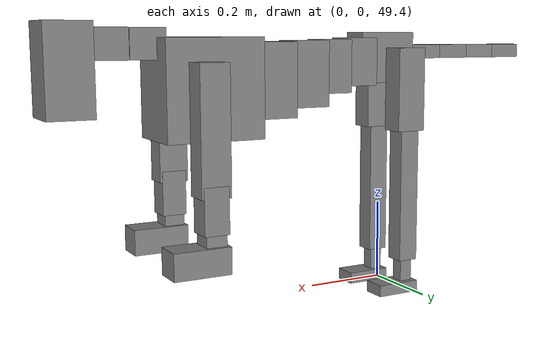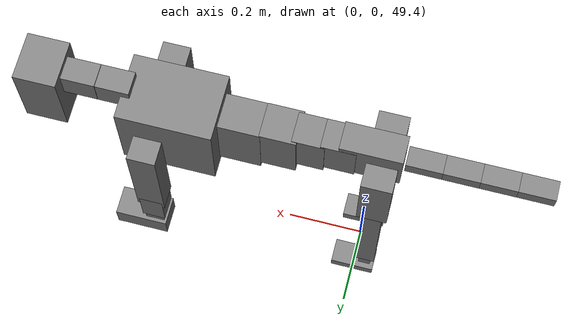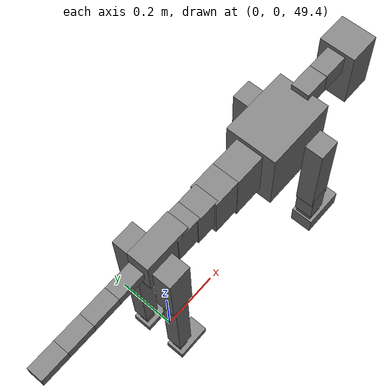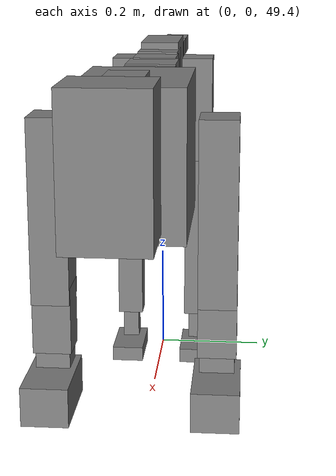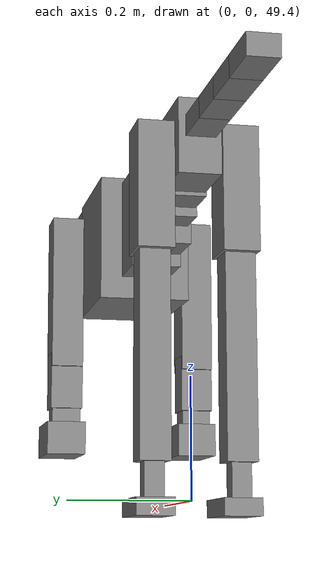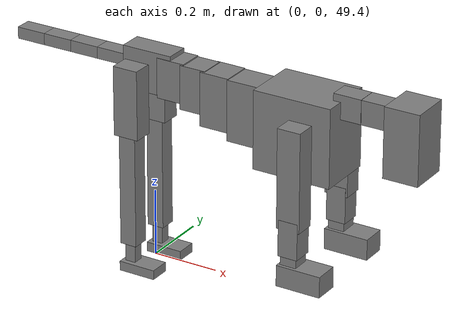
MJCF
<mujoco model="dog">

    <default>
        <joint armature="0.02" stiffness="1" damping="0.2" limited="true"/>
        <geom condim="3" friction="1 0.05 0.05" margin="0.01"/>
        <motor ctrllimited="true" ctrlrange="-1.0 1.0" forcelimited="true" gear="50"/>
    </default>

    <compiler inertiafromgeom="true" angle="radian"/>

    <option timestep="0.016" iterations="50" tolerance="1e-10" solver="Newton" jacobian="dense" cone="pyramidal"/>

    <size nconmax="20000" njmax="60000" nstack="5000000"/>
    <visual>
        <map force="0.1" zfar="30"/>
        <rgba haze="0.15 0.25 0.35 1"/>
        <quality shadowsize="2048"/>
        <global offwidth="800" offheight="800"/>
    </visual>

    <asset>
        <texture type="skybox" builtin="gradient" rgb1="0.3 0.5 0.7" rgb2="0 0 0" width="512" height="512"/>
        <texture name="texplane" type="2d" builtin="checker" rgb1=".2 .3 .4" rgb2=".1 0.15 0.2" width="512" height="512"
                 mark="cross" markrgb=".8 .8 .8"/>
        <texture name="texgeom" type="cube" builtin="flat" mark="cross" width="127" height="1278" rgb1="0.8 0.6 0.4"
                 rgb2="0.8 0.6 0.4" markrgb="1 1 1" random="0.01"/>

        <material name="matplane" reflectance="0.3" texture="texplane" texrepeat="1 1" texuniform="true"/>
        <material name="matgeom" texture="texgeom" texuniform="true" rgba="0.8 0.6 .4 1"/>
    </asset>

    <worldbody>
        <geom name="floor" pos="0 0 0" size="0 0 .25" type="plane" material="matplane" condim="3"/>

        <light directional="false" diffuse=".2 .2 .2" specular="0 0 0" pos="0 0 5" dir="0 0 -1" castshadow="false"/>
        <light mode="targetbodycom" target="torso" directional="false" diffuse=".8 .8 .8" specular="0.3 0.3 0.3"
               pos="0 0 4.0" dir="0 0 -1"/>

        <body name="root" pos="0 0 50">
            <freejoint name="root_1"/>
            <geom type="box" pos="0 0 -0.02" size="0.0774  0.0358  0.063" density="2030"/>

            <body name="spine1" pos="0.054 0 0">
                <joint name="spine1_y" axis="0 1 0" range="0 0.7" limited="true"/>
                <geom type="box" pos="0.02375 0 -0.03" size="0.04375  0.0375  0.05985" density="2030"/>

                <body name="spine2" pos="0.0612 0 0">
                    <joint name="spine2_y" axis="0 1 0" range="-0.15 0.15" limited="true"/>
                    <geom type="box" pos="0.03555  0  -0.04" size="0.04055  0.039  0.06615" density="2030"/>

                    <body name="spine3" pos="0.0730 0 0">
                        <joint name="spine3_y" axis="0 1 0" range="-0.15 0.15" limited="true"/>
                        <geom type="box" pos="0.03555  0  -0.057" size="0.04555  0.0445  0.081" density="2030"/>

                        <body name="spine4" pos="0.0780 0 0">
                            <joint name="spine4_y" axis="0 1 0" range="-0.15 0.15" limited="true"/>
                            <geom type="box" pos="0.05265  0  -0.07" size="0.05265  0.045  0.09135" density="2030"/>

                            <body name="torso" pos="0.1082 0 0">
                                <joint name="torso_y" axis="0 1 0" range="-0.15 0.15" limited="true"/>
                                <geom type="box" pos="0.11925  0  -0.085" size="0.11925  0.085  0.11745"
                                      density="2030"/>

                                <body name="neck1" pos="0.2160  0   0.0180">
                                    <joint name="neck1_y" axis="0 1 0" range="-1.2  -1" limited="true"/>
                                    <geom type="box" pos="0.0423  0  0" size="0.0423  0.03  0.036" density="2325"/>

                                    <body name="neck2" pos="0.0853  0  0">
                                        <joint name="neck2_y" axis="0 1 0" range="0.1  0" limited="true"/>
                                        <geom type="box" pos="0.0423  0  0" size="0.0423  0.03  0.036" density="2325"/>

                                        <body name="head" pos="0.0853  0  0">
                                            <joint name="head_y" axis="0 1 0" range="-0.3  -0.2" limited="true"/>
                                            <geom type="box" pos="0.0531  0  -0.055" size="0.0531  0.06  0.1044"
                                                  density="4030"/>

                                        </body>
                                    </body>
                                </body>

                                <body name="front_shoulder" pos="0.156  0   -0.0480">
                                    <joint name="front_shoulder_y" axis="0 1 0" range="-1 1.5" limited="true"/>
                                    <geom type="box" pos="0 0.13 -0.1214" size="0.0354  0.0303  0.1481" density="1158"/>
                                    <geom type="box" pos="0 -0.13 -0.1214" size="0.0354  0.0303  0.1481"
                                          density="1158"/>

                                    <body name="front_elbow" pos="0  0  -0.2429">
                                        <joint name="front_elbow_y" axis="0 1 0" range="-2 0" limited="true"/>
                                        <geom type="box" pos="0 0.13 -0.0543" size="0.0298  0.0305  0.0543"
                                              density="1081"/>
                                        <geom type="box" pos="0 -0.13 -0.0543" size="0.0298  0.0305  0.0543"
                                              density="1081"/>

                                        <body name="front_wrist" pos="0  0  -0.1087">
                                            <joint name="front_wrist_y" axis="0 1 0" range="-0.2 0" limited="true"/>
                                            <geom type="box" pos="0 0.13 -0.0206" size="0.0246  0.0273  0.0338"
                                                  density="1664"/>
                                            <geom type="box" pos="0 -0.13 -0.0206" size="0.0246  0.0273  0.0338"
                                                  density="1664"/>

                                            <body name="front_finger_end" pos="0  0  -0.0412">
                                                <joint name="front_finger_y" axis="0 1 0" range="-0.4 1"
                                                       limited="true"/>
                                                <geom type="box" pos="0.0371  0.13  -0.0164"
                                                      size="0.0680  0.0371  0.0314" density="1515"/>
                                                <geom type="box" pos="0.0371  -0.13  -0.0164"
                                                      size="0.0680  0.0371  0.0314" density="1515"/>

                                            </body>

                                        </body>
                                    </body>
                                </body>

                            </body>
                        </body>
                    </body>
                </body>
            </body>

            <body name="back_hip" pos="-0.03 0 -0.018">
                <joint name="back_hip_y" axis="0 1 0" range="-1.5 0.3" limited="true"/>
                <geom type="box" pos="0 0.07 -0.0816" size="0.0385  0.0302  0.1044" density="1154"/>
                <geom type="box" pos="0 -0.07 -0.0816" size="0.0385  0.0302  0.1044" density="1154"/>

                <body name="back_knee" pos="0  0  -0.1632">
                    <joint name="back_knee_y" axis="0 1 0" range="0 2.8" limited="true"/>
                    <geom type="box" pos="0 0.07 -0.1715" size="0.0256  0.0252  0.1870" density="1227"/>
                    <geom type="box" pos="0 -0.07 -0.1715" size="0.0256  0.0252  0.1870" density="1227"/>

                    <body name="back_ankle" pos="0  0  -0.3430">
                        <joint name="back_ankle_y" axis="0 1 0" range="-2.2 0" limited="true"/>
                        <geom type="box" pos="0 0.07 -0.0431" size="0.0161  0.0161  0.0544" density="1284"/>
                        <geom type="box" pos="0 -0.07 -0.0431" size="0.0161  0.0161  0.0544" density="1284"/>

                        <body name="back_toe_end" pos="0  0  -0.0862">
                            <joint name="back_toe_y" axis="0 1 0" range="-0.4 1" limited="true"/>
                            <geom type="box" pos="0.0311  0.07  0.0008" size="0.0570  0.0311  0.0142" density="1515"/>
                            <geom type="box" pos="0.0311  -0.07  0.0008" size="0.0570  0.0311  0.0142" density="1515"/>

                        </body>
                    </body>
                </body>
            </body>

            <body name="tail1" pos="-0.074 0 -0.006">
                <joint name="tail1_y" axis="0 1 0" range="-0.2 0.2" limited="true"/>
                <geom type="box" pos="-0.0536  0  0" size="0.045  0.025  0.0175" density="1587"/>

                <body name="tail2" pos="-0.09 0 0">
                    <joint name="tail2_y" axis="0 1 0" range="-0.2 0.2" limited="true"/>
                    <geom type="box" pos="-0.0536  0  0" size="0.045  0.025  0.0175" density="1587"/>

                    <body name="tail3" pos="-0.09 0 0">
                        <joint name="tail3_y" axis="0 1 0" range="-0.2 0.2" limited="true"/>
                        <geom type="box" pos="-0.0536  0  0" size="0.045  0.025  0.0175" density="1587"/>

                        <body name="tail4" pos="-0.09 0 0">
                            <joint name="tail4_y" axis="0 1 0" range="-0.2 0.2" limited="true"/>
                            <geom type="box" pos="-0.0536  0  0" size="0.045  0.025  0.0175" density="1587"/>

                        </body>
                    </body>
                </body>
            </body>
        </body>
    </worldbody>

    <actuator>
        <motor joint="spine1_y" forcerange="-150 150     "/>
        <motor joint="spine2_y" forcerange="-150 150     "/>
        <motor joint="spine3_y" forcerange="-150 150     "/>
        <motor joint="spine4_y" forcerange="-150 150     "/>
        <motor joint="torso_y" forcerange="-150 150     "/>
        <motor joint="neck1_y" forcerange="-100 100       "/>
        <motor joint="neck2_y" forcerange="-100 100       "/>
        <motor joint="head_y" forcerange="-150 150       "/>
        <motor joint="front_shoulder_y" forcerange="-119.23 182.74"/>
        <motor joint="front_elbow_y" forcerange="-195.37 126.31"/>
        <motor joint="front_wrist_y" forcerange="-70.36 148.00"/>
        <motor joint="front_finger_y" forcerange="-75.90 81.81"/>
        <motor joint="back_hip_y" forcerange="-321.81 281.30"/>
        <motor joint="back_knee_y" forcerange="-279.25 287.59"/>
        <motor joint="back_angle_y" forcerange="-103.44 53.97"/>
        <motor joint="back_toe_y" forcerange="-127.88 40.74"/>
        <motor joint="tail1_y" forcerange="-50 50     "/>
        <motor joint="tail2_y" forcerange="-50 50     "/>
        <motor joint="tail3_y" forcerange="-50 50     "/>
        <motor joint="tail4_y" forcerange="-50 50     "/>
    </actuator>
</mujoco>
